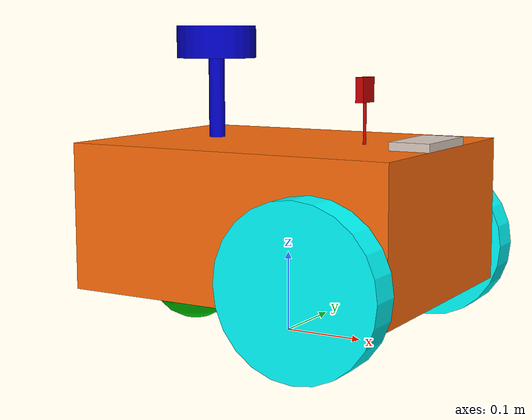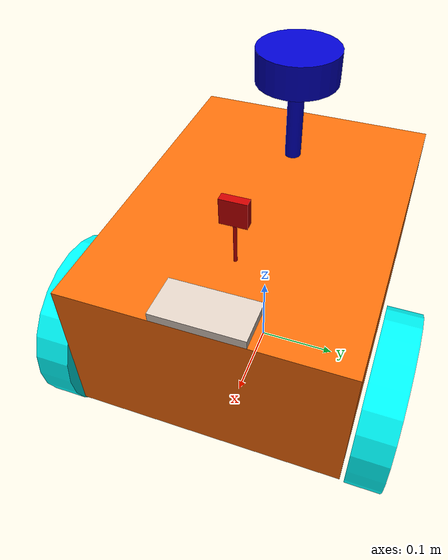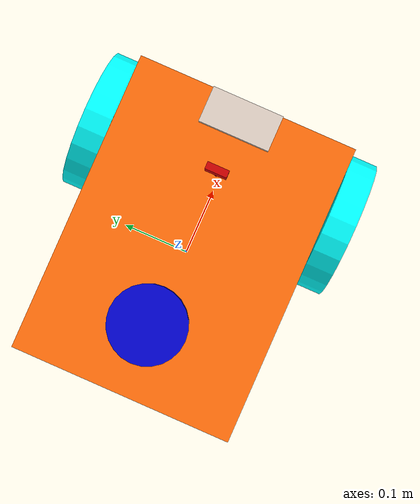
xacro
<?xml version="1.0"?>
<robot name="spb_urdf" xmlns:xacro="http://www.ros.org/wiki/xacro">

    <xacro:include filename="spb_urdf_core.xacro" />

    <xacro:include filename="spb_urdf_lidar.xacro" />
    <xacro:include filename="spb_urdf_camera.xacro" />
    <xacro:include filename="spb_urdf_imu.xacro" />

    <xacro:include filename="spb_urdf_gzplugin_spawn.xacro" />

</robot>

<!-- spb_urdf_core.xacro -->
<robot name="spb_urdf" xmlns:xacro="http://ros.org/wiki/xacro">

    <xacro:include filename="spb_urdf_inertial.xacro"/>
    <xacro:include filename="spb_urdf_materials.xacro"/>

    <!-- Define robot parameters -->
    <xacro:property name="base_length" value="0.42"/>
    <xacro:property name="base_width" value="0.31"/>
    <xacro:property name="base_height" value="0.18"/>
    <xacro:property name="base_mass" value="1.0"/>

    <xacro:property name="wheel_radius" value="0.10"/>
    <xacro:property name="wheel_width" value="0.04"/>
    <xacro:property name="wheel_ygap" value="0.025"/>
    <xacro:property name="wheel_zoff" value="0.05"/>
    <xacro:property name="wheel_xoff" value="0.12"/>
    <xacro:property name="wheel_mass" value="0.05"/>

    <xacro:property name="caster_xoff" value="0.14"/>
    <xacro:property name="caster_mass" value="0.01"/>

    <!-- Robot Base -->
    <link name="base_link">
        <visual>
            <geometry>
                <box size="${base_length} ${base_width} ${base_height}"/>
            </geometry>
            <material name="Orange"/>
        </visual>

        <collision>
            <geometry>
                <box size="${base_length} ${base_width} ${base_height}"/>
            </geometry>
        </collision>

        <xacro:inertial_box mass="${base_mass}" length="${base_length}" width="${base_width}" height="${base_height}">
            <origin xyz="0 0 0" rpy="0 0 0"/>
        </xacro:inertial_box>
    </link>

    <!-- Robot Footprint -->
    <link name="base_footprint">
        <xacro:inertial_box mass="0" length="0" width="0" height="0">
            <origin xyz="0 0 0" rpy="0 0 0"/>
        </xacro:inertial_box>
    </link>

    <joint name="base_joint" type="fixed">
        <parent link="base_footprint"/>
        <child link="base_link"/>
        <origin xyz="0.0 0.0 ${(wheel_radius+wheel_zoff)}" rpy="0 0 0"/>
    </joint>

    <!-- Wheels -->
    <xacro:macro name="wheel" params="prefix x_reflect y_reflect">
        <link name="${prefix}_link">
            <visual>
                <origin xyz="0 0 0" rpy="${pi/2} 0 0"/>
                <geometry>
                    <cylinder radius="${wheel_radius}" length="${wheel_width}"/>
                </geometry>
                <material name="Cyan"/>
            </visual>

            <collision>
                <origin xyz="0 0 0" rpy="${pi/2} 0 0"/>
                <geometry>
                    <cylinder radius="${wheel_radius}" length="${wheel_width}"/>
                </geometry>
            </collision>

            <xacro:inertial_cylinder mass="${wheel_mass}" length="${wheel_width}" radius="${wheel_radius}">
                <origin xyz="0 0 0" rpy="0 0 0"/>
            </xacro:inertial_cylinder>
        </link>

        <joint name="${prefix}_joint" type="continuous">
            <parent link="base_link"/>
            <child link="${prefix}_link"/>
            <origin xyz="${x_reflect*wheel_xoff} ${y_reflect*(base_width/2+wheel_ygap)} ${-wheel_zoff}" rpy="0 0 0"/>
            <axis xyz="0 1 0"/>
        </joint>
    </xacro:macro>

    <xacro:wheel prefix="wheel_left" x_reflect="1" y_reflect="1" />
    <xacro:wheel prefix="wheel_right" x_reflect="1" y_reflect="-1" />

    <!-- Caster Wheel -->
    <link name="front_caster">
        <visual>
            <geometry>
                <sphere radius="${(wheel_radius+wheel_zoff-(base_height/2))}"/>
            </geometry>
            <material name="Green"/>
        </visual>

        <collision>
            <geometry>
                <sphere radius="${(wheel_radius+wheel_zoff-(base_height/2))}"/>
            </geometry>
        </collision>

        <xacro:inertial_sphere mass="${caster_mass}" radius="${(wheel_radius+wheel_zoff-(base_height/2))}">
            <origin xyz="0 0 0" rpy="0 0 0"/>
        </xacro:inertial_sphere>
    </link>

    <joint name="caster_joint" type="fixed">
        <parent link="base_link"/>
        <child link="front_caster"/>
        <origin xyz="${-caster_xoff} 0.0 ${-(base_height/2)}" rpy="0 0 0"/>
    </joint>

</robot>

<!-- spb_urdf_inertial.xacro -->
<robot xmlns:xacro="http://www.ros.org/wiki/xacro" >

    <!-- Specify some standard inertial calculations https://en.wikipedia.org/wiki/List_of_moments_of_inertia -->
    <!-- These make use of xacro's mathematical functionality -->

    <xacro:macro name="inertial_sphere" params="mass radius *origin">
        <inertial>
            <xacro:insert_block name="origin"/>
            <mass value="${mass}" />
            <inertia ixx="${(2/5) * mass * (radius*radius)}" ixy="0.0" ixz="0.0"
                    iyy="${(2/5) * mass * (radius*radius)}" iyz="0.0"
                    izz="${(2/5) * mass * (radius*radius)}" />
        </inertial>
    </xacro:macro>

    <xacro:macro name="inertial_box" params="mass length width height *origin">
        <inertial>
            <xacro:insert_block name="origin"/>
            <mass value="${mass}" />
            <inertia ixx="${(1/12) * mass * (width*width+height*height)}" ixy="0.0" ixz="0.0"
                    iyy="${(1/12) * mass * (length*length+height*height)}" iyz="0.0"
                    izz="${(1/12) * mass * (length*length+width*width)}" />
        </inertial>
    </xacro:macro>

    <xacro:macro name="inertial_cylinder" params="mass length radius *origin">
        <inertial>
            <xacro:insert_block name="origin"/>
            <mass value="${mass}" />
            <inertia ixx="${(1/12) * mass * (3*radius*radius + length*length)}" ixy="0.0" ixz="0.0"
                    iyy="${(1/12) * mass * (3*radius*radius + length*length)}" iyz="0.0"
                    izz="${(1/2) * mass * (radius*radius)}" />
        </inertial>
    </xacro:macro>

</robot>

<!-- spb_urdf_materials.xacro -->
<robot xmlns:xacro="http://www.ros.org/wiki/xacro">

    <material name="Black">
        <color rgba="0.0 0.0 0.0 1.0"/>
    </material>

    <material name="Dark">
        <color rgba="0.3 0.3 0.3 1.0"/>
    </material>

    <material name="Light_black">
        <color rgba="0.4 0.4 0.4 1.0"/>
    </material>

    <material name="Blue">
        <color rgba="0.0 0.0 0.8 1.0"/>
    </material>

    <material name="Green">
        <color rgba="0.0 0.8 0.0 1.0"/>
    </material>

    <material name="Grey">
        <color rgba="0.5 0.5 0.5 1.0"/>
    </material>

    <material name="Orange">
        <color rgba="${255/255} ${108/255} ${10/255} 1.0"/>
    </material>

    <material name="Brown">
        <color rgba="${222/255} ${207/255} ${195/255} 1.0"/>
    </material>

    <material name="Red">
        <color rgba="0.8 0.0 0.0 1.0"/>
    </material>

    <material name="White">
        <color rgba="1.0 1.0 1.0 1.0"/>
    </material>

    <material name="Cyan">
        <color rgba="0 1.0 1.0 1.0"/>
    </material>

</robot>

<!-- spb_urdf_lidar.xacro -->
<robot xmlns:xacro="http://www.ros.org/wiki/xacro" >

    <joint name="lidar_joint" type="fixed">
        <parent link="base_link"/>
        <child link="lidar_link"/>
        <origin xyz="${-base_length/4} 0 ${base_height/2+0.04/2+0.1}" rpy="0 0 0"/>
    </joint>

    <link name="lidar_link">
        <visual>
            <geometry>
                <cylinder radius="0.05" length="0.04"/>
            </geometry>
            <material name="Blue"/>
        </visual>
        <visual>
            <origin xyz="0 0 ${-0.1/2-0.04/2}"/>
            <geometry>
                <cylinder radius="0.01" length="0.1"/>
            </geometry>
            <material name="Blue"/>
        </visual>
        <collision>
            <geometry>
                <cylinder radius="0.05" length="0.04"/>
            </geometry>
        </collision>
        <xacro:inertial_cylinder mass="0.1" length="0.04" radius="0.05">
            <origin xyz="0 0 0" rpy="0 0 0"/>
        </xacro:inertial_cylinder>
    </link>

</robot>

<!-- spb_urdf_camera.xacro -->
<robot xmlns:xacro="http://www.ros.org/wiki/xacro" >

    <joint name="camera_joint" type="fixed">
        <parent link="base_link"/>
        <child link="camera_link"/>
        <origin xyz="${base_length/4} 0 ${base_height/2+0.03/2+0.05}" rpy="0 0 0"/>
    </joint>

    <link name="camera_link">
        <visual>
            <geometry>
                <box size="0.010 0.03 0.03"/>
            </geometry>
            <material name="Red"/>
        </visual>
        <visual>
            <origin xyz="0 0 ${-0.05/2-0.03/2}"/>
            <geometry>
                <cylinder radius="0.002" length="0.05"/>
            </geometry>
            <material name="Red"/>
        </visual>
    </link>

    <joint name="camera_optical_joint" type="fixed">
        <parent link="camera_link"/>
        <child link="camera_optical_link"/>
        <origin xyz="0 0 0" rpy="0 0 0"/>
    </joint>

    <link name="camera_optical_link"></link>

</robot>

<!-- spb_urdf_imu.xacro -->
<robot xmlns:xacro="http://www.ros.org/wiki/xacro" >

    <joint name="imu_joint" type="fixed">
        <parent link="base_link"/>
        <child link="imu_link"/>
        <origin xyz="${base_length/2-0.05/2} 0 ${base_height/2+0.01/2}" rpy="0 0 0"/>
    </joint>

    <link name="imu_link">
        <visual>
            <geometry>
                <box size="0.05 0.1 0.01"/>
            </geometry>
            <material name="Brown"/>
        </visual>

        <collision>
            <geometry>
                <box size="0.05 0.1 0.01"/>
            </geometry>
        </collision>

        <xacro:inertial_box mass="0.1" length="0.05" width="0.1" height="0.1">
            <origin xyz="0 0 0" rpy="0 0 0"/>
        </xacro:inertial_box>

    </link>

</robot>
